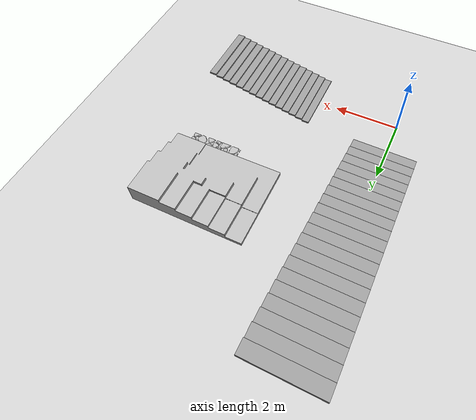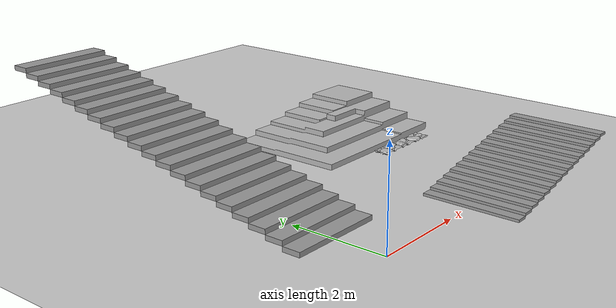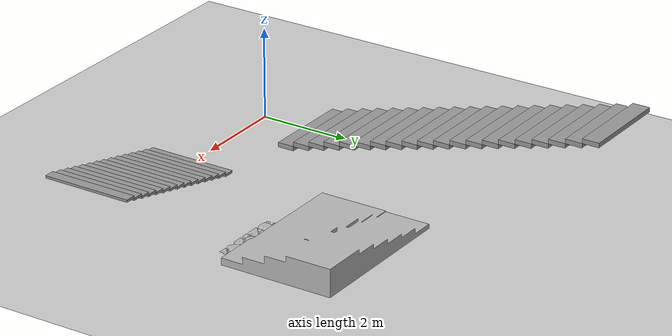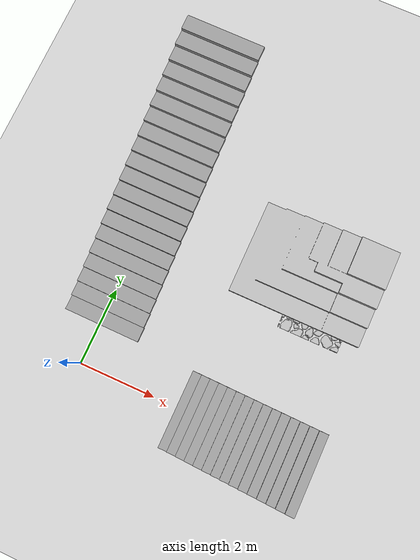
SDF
<sdf version="1.7">
 <world name="default">
  <model name="ground_plane">
   <static>1</static>
   <link name="link">
    <collision name="collision">
     <geometry><plane><normal>0 0 1</normal><size>100 100</size></plane></geometry>
     <surface>
      <contact><collide_bitmask>65535</collide_bitmask></contact>
      <friction><ode><mu>100</mu><mu2>50</mu2></ode></friction>
     </surface>
    </collision>
    <visual name="visual">
     <cast_shadows>0</cast_shadows>
     <geometry><plane><normal>0 0 1</normal><size>100 100</size></plane></geometry>
     <material>
      <script><uri>file://media/materials/scripts/gazebo.material</uri><name>Gazebo/Grey</name></script>
     </material>
    </visual>
   </link>
  </model>
  <model name="stair4">
   <pose>3.22875 -0.027347 0 0 -0 1.56364</pose>
   <link name="Stairs_0">
    <visual name="Stairs_0_Visual_0">
     <pose>-0 0.508333 0.026667 0 -0 0</pose>
     <geometry><box><size>2 0.233333 0.053333</size></box></geometry>
     <material>
      <script><uri>file://media/materials/scripts/gazebo.material</uri><name>Gazebo/Grey</name></script>
      <ambient>1 1 1 1</ambient>
     </material>
     <meta><layer>0</layer></meta>
    </visual>
    <collision name="Stairs_0_Collision_0">
     <geometry><box><size>2 0.233333 0.053333</size></box></geometry>
     <pose>-0 0.508333 0.026667 0 -0 0</pose>
    </collision>
    <visual name="Stairs_0_Visual_1">
     <pose>-0 0.275 0.08 0 -0 0</pose>
     <geometry><box><size>2 0.233333 0.053333</size></box></geometry>
     <material>
      <script><uri>file://media/materials/scripts/gazebo.material</uri><name>Gazebo/Grey</name></script>
      <ambient>1 1 1 1</ambient>
     </material>
     <meta><layer>0</layer></meta>
    </visual>
    <collision name="Stairs_0_Collision_1">
     <geometry><box><size>2 0.233333 0.053333</size></box></geometry>
     <pose>-0 0.275 0.08 0 -0 0</pose>
    </collision>
    <visual name="Stairs_0_Visual_2">
     <pose>-0 0.041667 0.133333 0 -0 0</pose>
     <geometry><box><size>2 0.233333 0.053333</size></box></geometry>
     <material>
      <script><uri>file://media/materials/scripts/gazebo.material</uri><name>Gazebo/Grey</name></script>
      <ambient>1 1 1 1</ambient>
     </material>
     <meta><layer>0</layer></meta>
    </visual>
    <collision name="Stairs_0_Collision_2">
     <geometry><box><size>2 0.233333 0.053333</size></box></geometry>
     <pose>-0 0.041667 0.133333 0 -0 0</pose>
    </collision>
    <visual name="Stairs_0_Visual_3">
     <pose>-0 -0.191667 0.186667 0 -0 0</pose>
     <geometry><box><size>2 0.233333 0.053333</size></box></geometry>
     <material>
      <script><uri>file://media/materials/scripts/gazebo.material</uri><name>Gazebo/Grey</name></script>
      <ambient>1 1 1 1</ambient>
     </material>
     <meta><layer>0</layer></meta>
    </visual>
    <collision name="Stairs_0_Collision_3">
     <geometry><box><size>2 0.233333 0.053333</size></box></geometry>
     <pose>-0 -0.191667 0.186667 0 -0 0</pose>
    </collision>
    <visual name="Stairs_0_Visual_4">
     <pose>-0 -0.425 0.24 0 -0 0</pose>
     <geometry><box><size>2 0.233333 0.053333</size></box></geometry>
     <material>
      <script><uri>file://media/materials/scripts/gazebo.material</uri><name>Gazebo/Grey</name></script>
      <ambient>1 1 1 1</ambient>
     </material>
     <meta><layer>0</layer></meta>
    </visual>
    <collision name="Stairs_0_Collision_4">
     <geometry><box><size>2 0.233333 0.053333</size></box></geometry>
     <pose>-0 -0.425 0.24 0 -0 0</pose>
    </collision>
    <visual name="Stairs_0_Visual_5">
     <pose>-0 -0.658333 0.293333 0 -0 0</pose>
     <geometry><box><size>2 0.233333 0.053333</size></box></geometry>
     <material>
      <script><uri>file://media/materials/scripts/gazebo.material</uri><name>Gazebo/Grey</name></script>
      <ambient>1 1 1 1</ambient>
     </material>
     <meta><layer>0</layer></meta>
    </visual>
    <collision name="Stairs_0_Collision_5">
     <geometry><box><size>2 0.233333 0.053333</size></box></geometry>
     <pose>-0 -0.658333 0.293333 0 -0 0</pose>
    </collision>
    <visual name="Stairs_0_Visual_6">
     <pose>-0 -0.891667 0.346667 0 -0 0</pose>
     <geometry><box><size>2 0.233333 0.053333</size></box></geometry>
     <material>
      <script><uri>file://media/materials/scripts/gazebo.material</uri><name>Gazebo/Grey</name></script>
      <ambient>1 1 1 1</ambient>
     </material>
     <meta><layer>0</layer></meta>
    </visual>
    <collision name="Stairs_0_Collision_6">
     <geometry><box><size>2 0.233333 0.053333</size></box></geometry>
     <pose>-0 -0.891667 0.346667 0 -0 0</pose>
    </collision>
    <visual name="Stairs_0_Visual_7">
     <pose>-0 -1.125 0.4 0 -0 0</pose>
     <geometry><box><size>2 0.233333 0.053333</size></box></geometry>
     <material>
      <script><uri>file://media/materials/scripts/gazebo.material</uri><name>Gazebo/Grey</name></script>
      <ambient>1 1 1 1</ambient>
     </material>
     <meta><layer>0</layer></meta>
    </visual>
    <collision name="Stairs_0_Collision_7">
     <geometry><box><size>2 0.233333 0.053333</size></box></geometry>
     <pose>-0 -1.125 0.4 0 -0 0</pose>
    </collision>
    <visual name="Stairs_0_Visual_8">
     <pose>-0 -1.35833 0.453333 0 -0 0</pose>
     <geometry><box><size>2 0.233333 0.053333</size></box></geometry>
     <material>
      <script><uri>file://media/materials/scripts/gazebo.material</uri><name>Gazebo/Grey</name></script>
      <ambient>1 1 1 1</ambient>
     </material>
     <meta><layer>0</layer></meta>
    </visual>
    <collision name="Stairs_0_Collision_8">
     <geometry><box><size>2 0.233333 0.053333</size></box></geometry>
     <pose>-0 -1.35833 0.453333 0 -0 0</pose>
    </collision>
    <visual name="Stairs_0_Visual_9">
     <pose>-0 -1.59167 0.506667 0 -0 0</pose>
     <geometry><box><size>2 0.233333 0.053333</size></box></geometry>
     <material>
      <script><uri>file://media/materials/scripts/gazebo.material</uri><name>Gazebo/Grey</name></script>
      <ambient>1 1 1 1</ambient>
     </material>
     <meta><layer>0</layer></meta>
    </visual>
    <collision name="Stairs_0_Collision_9">
     <geometry><box><size>2 0.233333 0.053333</size></box></geometry>
     <pose>-0 -1.59167 0.506667 0 -0 0</pose>
    </collision>
    <visual name="Stairs_0_Visual_10">
     <pose>-0 -1.825 0.56 0 -0 0</pose>
     <geometry><box><size>2 0.233333 0.053333</size></box></geometry>
     <material>
      <script><uri>file://media/materials/scripts/gazebo.material</uri><name>Gazebo/Grey</name></script>
      <ambient>1 1 1 1</ambient>
     </material>
     <meta><layer>0</layer></meta>
    </visual>
    <collision name="Stairs_0_Collision_10">
     <geometry><box><size>2 0.233333 0.053333</size></box></geometry>
     <pose>-0 -1.825 0.56 0 -0 0</pose>
    </collision>
    <visual name="Stairs_0_Visual_11">
     <pose>-0 -2.05833 0.613333 0 -0 0</pose>
     <geometry><box><size>2 0.233333 0.053333</size></box></geometry>
     <material>
      <script><uri>file://media/materials/scripts/gazebo.material</uri><name>Gazebo/Grey</name></script>
      <ambient>1 1 1 1</ambient>
     </material>
     <meta><layer>0</layer></meta>
    </visual>
    <collision name="Stairs_0_Collision_11">
     <geometry><box><size>2 0.233333 0.053333</size></box></geometry>
     <pose>-0 -2.05833 0.613333 0 -0 0</pose>
    </collision>
    <visual name="Stairs_0_Visual_12">
     <pose>-0 -2.29167 0.666667 0 -0 0</pose>
     <geometry><box><size>2 0.233333 0.053333</size></box></geometry>
     <material>
      <script><uri>file://media/materials/scripts/gazebo.material</uri><name>Gazebo/Grey</name></script>
      <ambient>1 1 1 1</ambient>
     </material>
     <meta><layer>0</layer></meta>
    </visual>
    <collision name="Stairs_0_Collision_12">
     <geometry><box><size>2 0.233333 0.053333</size></box></geometry>
     <pose>-0 -2.29167 0.666667 0 -0 0</pose>
    </collision>
    <visual name="Stairs_0_Visual_13">
     <pose>-0 -2.525 0.72 0 -0 0</pose>
     <geometry><box><size>2 0.233333 0.053333</size></box></geometry>
     <material>
      <script><uri>file://media/materials/scripts/gazebo.material</uri><name>Gazebo/Grey</name></script>
      <ambient>1 1 1 1</ambient>
     </material>
     <meta><layer>0</layer></meta>
    </visual>
    <collision name="Stairs_0_Collision_13">
     <geometry><box><size>2 0.233333 0.053333</size></box></geometry>
     <pose>-0 -2.525 0.72 0 -0 0</pose>
    </collision>
    <visual name="Stairs_0_Visual_14">
     <pose>-0 -2.75833 0.773333 0 -0 0</pose>
     <geometry><box><size>2 0.233333 0.053333</size></box></geometry>
     <material>
      <script><uri>file://media/materials/scripts/gazebo.material</uri><name>Gazebo/Grey</name></script>
      <ambient>1 1 1 1</ambient>
     </material>
     <meta><layer>0</layer></meta>
    </visual>
    <collision name="Stairs_0_Collision_14">
     <geometry><box><size>2 0.233333 0.053333</size></box></geometry>
     <pose>-0 -2.75833 0.773333 0 -0 0</pose>
    </collision>
   </link>
   <static>1</static>
  </model>
  <model name="cobblestones">
   <static>1</static>
   <link name="link">
    <pose>0 0 -0.09 0 -0 1.5708</pose>
    <collision name="collision">
     <geometry>
      <mesh><uri>model://cobblestones_1/mesh/cobblestones.dae</uri><scale>0.175 0.175 0.25</scale></mesh>
     </geometry>
     <surface>
      <bounce><restitution_coefficient>0.01</restitution_coefficient><threshold>5</threshold></bounce>
      <friction><ode><mu>10</mu><mu2>10</mu2></ode></friction>
      <contact><ode><soft_cfm>0.001</soft_cfm><kp>100000</kp><kd>1000</kd></ode></contact>
     </surface>
    </collision>
    <visual name="visual">
     <geometry>
      <mesh><uri>model://cobblestones_1/mesh/cobblestones.dae</uri><scale>0.175 0.175 0.25</scale></mesh>
     </geometry>
    </visual>
   </link>
   <pose>4.87334 3.52949 0 0 -0 0</pose>
  </model>
  <model name="complex_stairs">
   <static>1</static>
   <link name="link">
    <pose>0 0 0 1.57 -0 0</pose>
    <collision name="collision">
     <geometry><mesh><uri>model://complex_stairs_1/mesh/stairs.dae</uri><scale>1 1 1</scale></mesh></geometry>
    </collision>
    <visual name="visual">
     <geometry><mesh><uri>model://complex_stairs_1/mesh/stairs.dae</uri><scale>1 1 1</scale></mesh></geometry>
    </visual>
   </link>
   <pose>2.59649 5.14832 0 0 -0 0</pose>
  </model>
  <model name="stair5cm">
   <pose>0.091244 4.80742 0 0 -0 3.13537</pose>
   <link name="Stairs_1">
    <visual name="Stairs_1_Visual_0">
     <pose>0 3.5625 0.05 0 -0 0</pose>
     <geometry><box><size>2 0.375 0.1</size></box></geometry>
     <material>
      <script><uri>file://media/materials/scripts/gazebo.material</uri><name>Gazebo/Grey</name></script>
      <ambient>1 1 1 1</ambient>
     </material>
     <meta><layer>0</layer></meta>
    </visual>
    <collision name="Stairs_1_Collision_0">
     <geometry><box><size>2 0.375 0.1</size></box></geometry>
     <pose>0 3.5625 0.05 0 -0 0</pose>
    </collision>
    <visual name="Stairs_1_Visual_1">
     <pose>0 3.1875 0.15 0 -0 0</pose>
     <geometry><box><size>2 0.375 0.1</size></box></geometry>
     <material>
      <script><uri>file://media/materials/scripts/gazebo.material</uri><name>Gazebo/Grey</name></script>
      <ambient>1 1 1 1</ambient>
     </material>
     <meta><layer>0</layer></meta>
    </visual>
    <collision name="Stairs_1_Collision_1">
     <geometry><box><size>2 0.375 0.1</size></box></geometry>
     <pose>0 3.1875 0.15 0 -0 0</pose>
    </collision>
    <visual name="Stairs_1_Visual_2">
     <pose>0 2.8125 0.25 0 -0 0</pose>
     <geometry><box><size>2 0.375 0.1</size></box></geometry>
     <material>
      <script><uri>file://media/materials/scripts/gazebo.material</uri><name>Gazebo/Grey</name></script>
      <ambient>1 1 1 1</ambient>
     </material>
     <meta><layer>0</layer></meta>
    </visual>
    <collision name="Stairs_1_Collision_2">
     <geometry><box><size>2 0.375 0.1</size></box></geometry>
     <pose>0 2.8125 0.25 0 -0 0</pose>
    </collision>
    <visual name="Stairs_1_Visual_3">
     <pose>0 2.4375 0.35 0 -0 0</pose>
     <geometry><box><size>2 0.375 0.1</size></box></geometry>
     <material>
      <script><uri>file://media/materials/scripts/gazebo.material</uri><name>Gazebo/Grey</name></script>
      <ambient>1 1 1 1</ambient>
     </material>
     <meta><layer>0</layer></meta>
    </visual>
    <collision name="Stairs_1_Collision_3">
     <geometry><box><size>2 0.375 0.1</size></box></geometry>
     <pose>0 2.4375 0.35 0 -0 0</pose>
    </collision>
    <visual name="Stairs_1_Visual_4">
     <pose>0 2.0625 0.45 0 -0 0</pose>
     <geometry><box><size>2 0.375 0.1</size></box></geometry>
     <material>
      <script><uri>file://media/materials/scripts/gazebo.material</uri><name>Gazebo/Grey</name></script>
      <ambient>1 1 1 1</ambient>
     </material>
     <meta><layer>0</layer></meta>
    </visual>
    <collision name="Stairs_1_Collision_4">
     <geometry><box><size>2 0.375 0.1</size></box></geometry>
     <pose>0 2.0625 0.45 0 -0 0</pose>
    </collision>
    <visual name="Stairs_1_Visual_5">
     <pose>0 1.6875 0.55 0 -0 0</pose>
     <geometry><box><size>2 0.375 0.1</size></box></geometry>
     <material>
      <script><uri>file://media/materials/scripts/gazebo.material</uri><name>Gazebo/Grey</name></script>
      <ambient>1 1 1 1</ambient>
     </material>
     <meta><layer>0</layer></meta>
    </visual>
    <collision name="Stairs_1_Collision_5">
     <geometry><box><size>2 0.375 0.1</size></box></geometry>
     <pose>0 1.6875 0.55 0 -0 0</pose>
    </collision>
    <visual name="Stairs_1_Visual_6">
     <pose>0 1.3125 0.65 0 -0 0</pose>
     <geometry><box><size>2 0.375 0.1</size></box></geometry>
     <material>
      <script><uri>file://media/materials/scripts/gazebo.material</uri><name>Gazebo/Grey</name></script>
      <ambient>1 1 1 1</ambient>
     </material>
     <meta><layer>0</layer></meta>
    </visual>
    <collision name="Stairs_1_Collision_6">
     <geometry><box><size>2 0.375 0.1</size></box></geometry>
     <pose>0 1.3125 0.65 0 -0 0</pose>
    </collision>
    <visual name="Stairs_1_Visual_7">
     <pose>0 0.9375 0.75 0 -0 0</pose>
     <geometry><box><size>2 0.375 0.1</size></box></geometry>
     <material>
      <script><uri>file://media/materials/scripts/gazebo.material</uri><name>Gazebo/Grey</name></script>
      <ambient>1 1 1 1</ambient>
     </material>
     <meta><layer>0</layer></meta>
    </visual>
    <collision name="Stairs_1_Collision_7">
     <geometry><box><size>2 0.375 0.1</size></box></geometry>
     <pose>0 0.9375 0.75 0 -0 0</pose>
    </collision>
    <visual name="Stairs_1_Visual_8">
     <pose>0 0.5625 0.85 0 -0 0</pose>
     <geometry><box><size>2 0.375 0.1</size></box></geometry>
     <material>
      <script><uri>file://media/materials/scripts/gazebo.material</uri><name>Gazebo/Grey</name></script>
      <ambient>1 1 1 1</ambient>
     </material>
     <meta><layer>0</layer></meta>
    </visual>
    <collision name="Stairs_1_Collision_8">
     <geometry><box><size>2 0.375 0.1</size></box></geometry>
     <pose>0 0.5625 0.85 0 -0 0</pose>
    </collision>
    <visual name="Stairs_1_Visual_9">
     <pose>0 0.1875 0.95 0 -0 0</pose>
     <geometry><box><size>2 0.375 0.1</size></box></geometry>
     <material>
      <script><uri>file://media/materials/scripts/gazebo.material</uri><name>Gazebo/Grey</name></script>
      <ambient>1 1 1 1</ambient>
     </material>
     <meta><layer>0</layer></meta>
    </visual>
    <collision name="Stairs_1_Collision_9">
     <geometry><box><size>2 0.375 0.1</size></box></geometry>
     <pose>0 0.1875 0.95 0 -0 0</pose>
    </collision>
    <visual name="Stairs_1_Visual_10">
     <pose>0 -0.1875 1.05 0 -0 0</pose>
     <geometry><box><size>2 0.375 0.1</size></box></geometry>
     <material>
      <script><uri>file://media/materials/scripts/gazebo.material</uri><name>Gazebo/Grey</name></script>
      <ambient>1 1 1 1</ambient>
     </material>
     <meta><layer>0</layer></meta>
    </visual>
    <collision name="Stairs_1_Collision_10">
     <geometry><box><size>2 0.375 0.1</size></box></geometry>
     <pose>0 -0.1875 1.05 0 -0 0</pose>
    </collision>
    <visual name="Stairs_1_Visual_11">
     <pose>0 -0.5625 1.15 0 -0 0</pose>
     <geometry><box><size>2 0.375 0.1</size></box></geometry>
     <material>
      <script><uri>file://media/materials/scripts/gazebo.material</uri><name>Gazebo/Grey</name></script>
      <ambient>1 1 1 1</ambient>
     </material>
     <meta><layer>0</layer></meta>
    </visual>
    <collision name="Stairs_1_Collision_11">
     <geometry><box><size>2 0.375 0.1</size></box></geometry>
     <pose>0 -0.5625 1.15 0 -0 0</pose>
    </collision>
    <visual name="Stairs_1_Visual_12">
     <pose>0 -0.9375 1.25 0 -0 0</pose>
     <geometry><box><size>2 0.375 0.1</size></box></geometry>
     <material>
      <script><uri>file://media/materials/scripts/gazebo.material</uri><name>Gazebo/Grey</name></script>
      <ambient>1 1 1 1</ambient>
     </material>
     <meta><layer>0</layer></meta>
    </visual>
    <collision name="Stairs_1_Collision_12">
     <geometry><box><size>2 0.375 0.1</size></box></geometry>
     <pose>0 -0.9375 1.25 0 -0 0</pose>
    </collision>
    <visual name="Stairs_1_Visual_13">
     <pose>0 -1.3125 1.35 0 -0 0</pose>
     <geometry><box><size>2 0.375 0.1</size></box></geometry>
     <material>
      <script><uri>file://media/materials/scripts/gazebo.material</uri><name>Gazebo/Grey</name></script>
      <ambient>1 1 1 1</ambient>
     </material>
     <meta><layer>0</layer></meta>
    </visual>
    <collision name="Stairs_1_Collision_13">
     <geometry><box><size>2 0.375 0.1</size></box></geometry>
     <pose>0 -1.3125 1.35 0 -0 0</pose>
    </collision>
    <visual name="Stairs_1_Visual_14">
     <pose>0 -1.6875 1.45 0 -0 0</pose>
     <geometry><box><size>2 0.375 0.1</size></box></geometry>
     <material>
      <script><uri>file://media/materials/scripts/gazebo.material</uri><name>Gazebo/Grey</name></script>
      <ambient>1 1 1 1</ambient>
     </material>
     <meta><layer>0</layer></meta>
    </visual>
    <collision name="Stairs_1_Collision_14">
     <geometry><box><size>2 0.375 0.1</size></box></geometry>
     <pose>0 -1.6875 1.45 0 -0 0</pose>
    </collision>
    <visual name="Stairs_1_Visual_15">
     <pose>0 -2.0625 1.55 0 -0 0</pose>
     <geometry><box><size>2 0.375 0.1</size></box></geometry>
     <material>
      <script><uri>file://media/materials/scripts/gazebo.material</uri><name>Gazebo/Grey</name></script>
      <ambient>1 1 1 1</ambient>
     </material>
     <meta><layer>0</layer></meta>
    </visual>
    <collision name="Stairs_1_Collision_15">
     <geometry><box><size>2 0.375 0.1</size></box></geometry>
     <pose>0 -2.0625 1.55 0 -0 0</pose>
    </collision>
    <visual name="Stairs_1_Visual_16">
     <pose>0 -2.4375 1.65 0 -0 0</pose>
     <geometry><box><size>2 0.375 0.1</size></box></geometry>
     <material>
      <script><uri>file://media/materials/scripts/gazebo.material</uri><name>Gazebo/Grey</name></script>
      <ambient>1 1 1 1</ambient>
     </material>
     <meta><layer>0</layer></meta>
    </visual>
    <collision name="Stairs_1_Collision_16">
     <geometry><box><size>2 0.375 0.1</size></box></geometry>
     <pose>0 -2.4375 1.65 0 -0 0</pose>
    </collision>
    <visual name="Stairs_1_Visual_17">
     <pose>0 -2.8125 1.75 0 -0 0</pose>
     <geometry><box><size>2 0.375 0.1</size></box></geometry>
     <material>
      <script><uri>file://media/materials/scripts/gazebo.material</uri><name>Gazebo/Grey</name></script>
      <ambient>1 1 1 1</ambient>
     </material>
     <meta><layer>0</layer></meta>
    </visual>
    <collision name="Stairs_1_Collision_17">
     <geometry><box><size>2 0.375 0.1</size></box></geometry>
     <pose>0 -2.8125 1.75 0 -0 0</pose>
    </collision>
    <visual name="Stairs_1_Visual_18">
     <pose>0 -3.1875 1.85 0 -0 0</pose>
     <geometry><box><size>2 0.375 0.1</size></box></geometry>
     <material>
      <script><uri>file://media/materials/scripts/gazebo.material</uri><name>Gazebo/Grey</name></script>
      <ambient>1 1 1 1</ambient>
     </material>
     <meta><layer>0</layer></meta>
    </visual>
    <collision name="Stairs_1_Collision_18">
     <geometry><box><size>2 0.375 0.1</size></box></geometry>
     <pose>0 -3.1875 1.85 0 -0 0</pose>
    </collision>
    <visual name="Stairs_1_Visual_19">
     <pose>0 -3.5625 1.95 0 -0 0</pose>
     <geometry><box><size>2 0.375 0.1</size></box></geometry>
     <material>
      <script><uri>file://media/materials/scripts/gazebo.material</uri><name>Gazebo/Grey</name></script>
      <ambient>1 1 1 1</ambient>
     </material>
     <meta><layer>0</layer></meta>
    </visual>
    <collision name="Stairs_1_Collision_19">
     <geometry><box><size>2 0.375 0.1</size></box></geometry>
     <pose>0 -3.5625 1.95 0 -0 0</pose>
    </collision>
   </link>
   <static>1</static>
  </model>
 </world>
</sdf>
